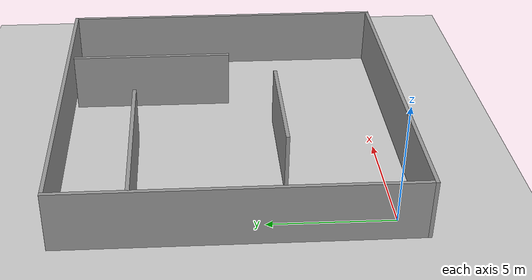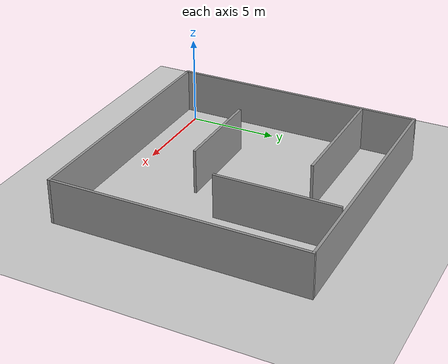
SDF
<sdf version="1.6">
 <world name="default">
  <light name="sun" type="directional">
   <pose>0 0 10 0 -0 0</pose>
   <diffuse>0.8 0.8 0.8 1</diffuse>
   <specular>0.1 0.1 0.1 1</specular>
   <attenuation>
    <range>1000</range>
    <constant>0.9</constant>
    <linear>0.01</linear>
    <quadratic>0.001</quadratic>
   </attenuation>
   <direction>-0.5 0.5 -1</direction>
  </light>
  <model name="ground_plane">
   <static>1</static>
   <link name="link">
    <collision name="collision">
     <geometry><plane><normal>0 0 1</normal><size>100 100</size></plane></geometry>
     <surface><friction><ode><mu>100</mu><mu2>50</mu2></ode></friction></surface>
    </collision>
    <visual name="visual">
     <cast_shadows>0</cast_shadows>
     <geometry><plane><normal>0 0 1</normal><size>100 100</size></plane></geometry>
     <material>
      <script><uri>file://media/materials/scripts/gazebo.material</uri><name>Gazebo/Grey</name></script>
     </material>
    </visual>
   </link>
  </model>
  <gravity>0 0 -9.8</gravity>
  <magnetic_field>6e-06 2.3e-05 -4.2e-05</magnetic_field>
  <atmosphere type="adiabatic"/>
  <physics name="default_physics" default="0" type="ode">
   <max_step_size>0.001</max_step_size>
   <real_time_factor>1</real_time_factor>
   <real_time_update_rate>1000</real_time_update_rate>
  </physics>
  <scene><ambient>0.4 0.4 0.4 1</ambient><background>0.7 0.7 0.7 1</background><shadows>1</shadows></scene>
  <spherical_coordinates>
   <surface_model>EARTH_WGS84</surface_model>
   <latitude_deg>0</latitude_deg>
   <longitude_deg>0</longitude_deg>
   <elevation>0</elevation>
   <heading_deg>0</heading_deg>
  </spherical_coordinates>
  <model name="yjy">
   <pose>6 6 0 0 -0 0</pose>
   <link name="Wall_13">
    <collision name="Wall_13_Collision">
     <geometry><box><size>14.15 0.15 2.5</size></box></geometry>
     <pose>0 0 1.25 0 -0 0</pose>
    </collision>
    <visual name="Wall_13_Visual">
     <pose>0 0 1.25 0 -0 0</pose>
     <geometry><box><size>14.15 0.15 2.5</size></box></geometry>
     <material>
      <script><uri>file://media/materials/scripts/gazebo.material</uri><name>Gazebo/Grey</name></script>
      <ambient>1 1 1 1</ambient>
     </material>
    </visual>
    <pose>0 7 0 0 -0 0</pose>
   </link>
   <link name="Wall_15">
    <collision name="Wall_15_Collision">
     <geometry><box><size>14.15 0.15 2.5</size></box></geometry>
     <pose>0 0 1.25 0 -0 0</pose>
    </collision>
    <visual name="Wall_15_Visual">
     <pose>0 0 1.25 0 -0 0</pose>
     <geometry><box><size>14.15 0.15 2.5</size></box></geometry>
     <material>
      <script><uri>file://media/materials/scripts/gazebo.material</uri><name>Gazebo/Grey</name></script>
      <ambient>1 1 1 1</ambient>
     </material>
    </visual>
    <pose>7 0 0 0 0 -1.5708</pose>
   </link>
   <link name="Wall_17">
    <collision name="Wall_17_Collision">
     <geometry><box><size>7.15 0.15 2.5</size></box></geometry>
     <pose>0 0 1.25 0 -0 0</pose>
    </collision>
    <visual name="Wall_17_Visual">
     <pose>0 0 1.25 0 -0 0</pose>
     <geometry><box><size>7.15 0.15 2.5</size></box></geometry>
     <material>
      <script><uri>file://media/materials/scripts/gazebo.material</uri><name>Gazebo/Grey</name></script>
      <ambient>1 1 1 1</ambient>
     </material>
    </visual>
    <pose>-3.5 4 0 0 -0 0</pose>
   </link>
   <link name="Wall_19">
    <collision name="Wall_19_Collision">
     <geometry><box><size>5.25 0.15 2.5</size></box></geometry>
     <pose>0 0 1.25 0 -0 0</pose>
    </collision>
    <visual name="Wall_19_Visual">
     <pose>0 0 1.25 0 -0 0</pose>
     <geometry><box><size>5.25 0.15 2.5</size></box></geometry>
     <material>
      <script><uri>file://media/materials/scripts/gazebo.material</uri><name>Gazebo/Grey</name></script>
      <ambient>1 1 1 1</ambient>
     </material>
    </visual>
    <pose>-1.25 -2 0 0 -0 0</pose>
   </link>
   <link name="Wall_2">
    <collision name="Wall_2_Collision">
     <geometry><box><size>14.15 0.15 2.5</size></box></geometry>
     <pose>0 0 1.25 0 -0 0</pose>
    </collision>
    <visual name="Wall_2_Visual">
     <pose>0 0 1.25 0 -0 0</pose>
     <geometry><box><size>14.15 0.15 2.5</size></box></geometry>
     <material>
      <script><uri>file://media/materials/scripts/gazebo.material</uri><name>Gazebo/Grey</name></script>
      <ambient>1 1 1 1</ambient>
     </material>
    </visual>
    <pose>0 -7 0 0 -0 0</pose>
   </link>
   <link name="Wall_21">
    <collision name="Wall_21_Collision">
     <geometry><box><size>6.85 0.15 2.5</size></box></geometry>
     <pose>0 0 1.25 0 -0 0</pose>
    </collision>
    <visual name="Wall_21_Visual">
     <pose>0 0 1.25 0 -0 0</pose>
     <geometry><box><size>6.85 0.15 2.5</size></box></geometry>
     <material>
      <script><uri>file://media/materials/scripts/gazebo.material</uri><name>Gazebo/Grey</name></script>
      <ambient>1 1 1 1</ambient>
     </material>
    </visual>
    <pose>3 3.35 0 0 0 -1.5708</pose>
   </link>
   <link name="Wall_4">
    <collision name="Wall_4_Collision">
     <geometry><box><size>14.15 0.15 2.5</size></box></geometry>
     <pose>0 0 1.25 0 -0 0</pose>
    </collision>
    <visual name="Wall_4_Visual">
     <pose>0 0 1.25 0 -0 0</pose>
     <geometry><box><size>14.15 0.15 2.5</size></box></geometry>
     <material>
      <script><uri>file://media/materials/scripts/gazebo.material</uri><name>Gazebo/Grey</name></script>
      <ambient>1 1 1 1</ambient>
     </material>
    </visual>
    <pose>-7 0 0 0 -0 1.5708</pose>
   </link>
   <static>1</static>
  </model>
 </world>
</sdf>
